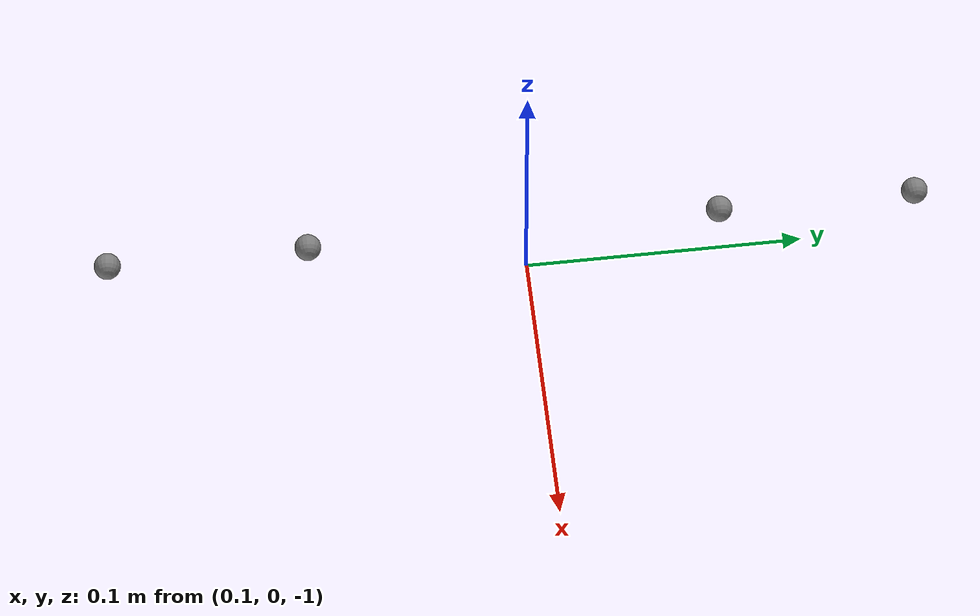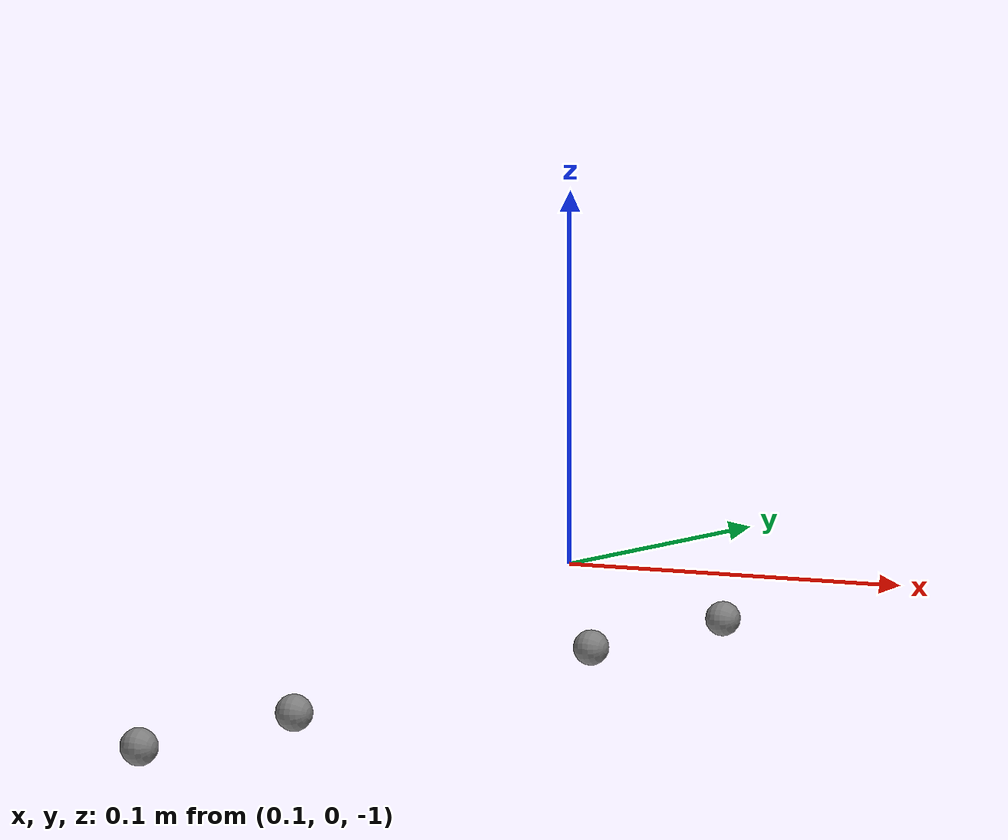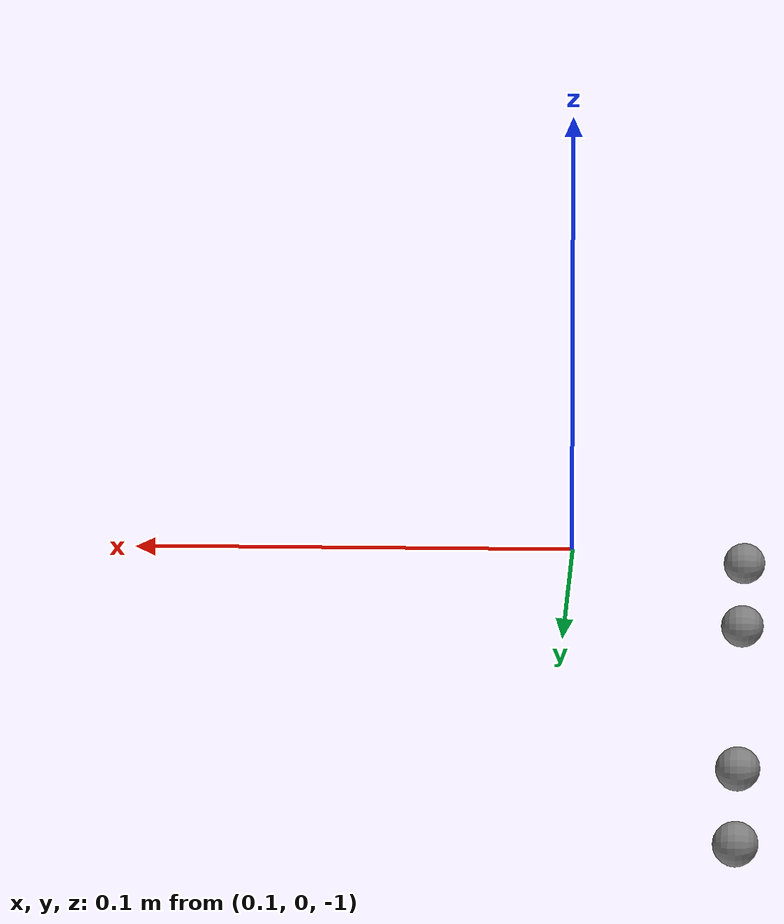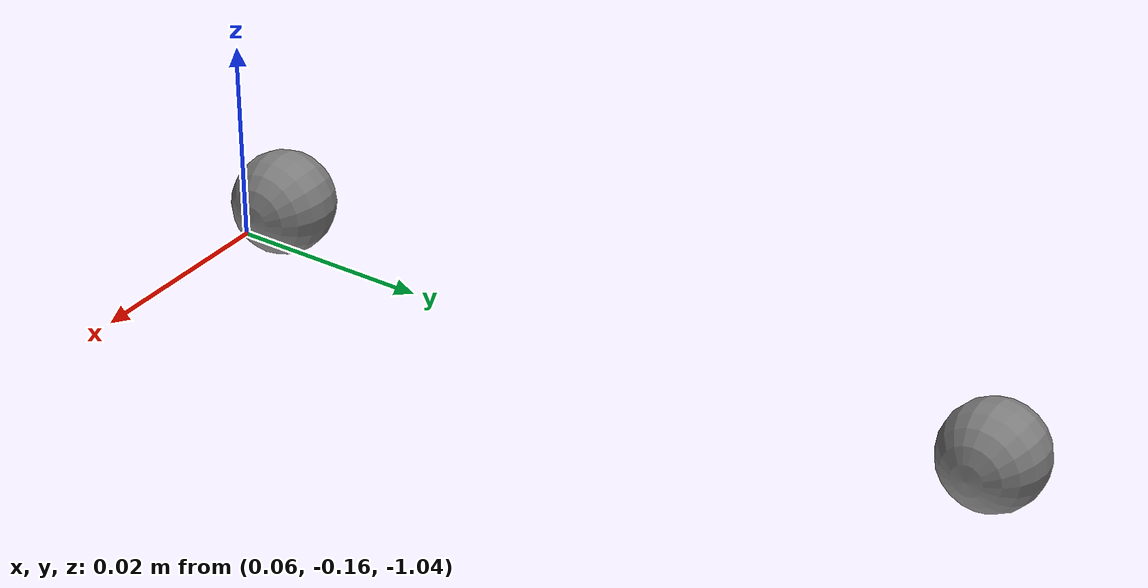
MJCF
<mujoco model="unitree_h2_plus_12dof">
  <compiler angle="radian"/>
  <default>
    <default class="collision"/>
  </default>
  <worldbody>
    <body name="pelvis" pos="0 0 0" quat="1 0 0 0">
      <inertial pos="0.0273401879 0.0192527875 0.248356972" mass="45.0364703" fullinertia="2.52740106 2.67104319 1.55453147 -0.104789805 0.473637873 0.058063274"/>
      <freejoint/>
      <body name="left_hip_pitch_link" pos="0 0.08038 -0.046407" quat="0.49999947 -0.86602571 0 0">
        <inertial pos="0.00294368 0.01735095 0.06110195" mass="2.8737" fullinertia="0.00536755004 0.00403077 0.00387518996 -1.13804191e-05 -9.87896978e-05 -0.000248859971"/>
        <joint name="left_hip_pitch_joint" axis="0 0 1" range="-2.4525975 2.7754225"/>
        <body name="left_hip_roll_link" pos="0.041774 0.019 0.0635" quat="0.353553016 0.612372652 0.353553016 0.612372652">
          <inertial pos="0.041315 -0.00607425 -0.01757892" mass="0.78507858" fullinertia="0.00228152014 0.00203648998 0.00157951988 0.000126149995 0.000208639779 -2.65400908e-05"/>
          <joint name="left_hip_roll_joint" axis="0 0 1" range="-0.467441 2.1688605"/>
          <body name="left_hip_yaw_link" pos="0.0737 -0.0095 -0.028187" quat="0.707106781 0 -0.707106781 0">
            <inertial pos="0.00069408 -0.01086587 -0.11301456" mass="7.0875" fullinertia="0.0505800001 0.0511049999 0.013319 -5.54702341e-05 0.00146680002 -0.003122"/>
            <joint name="left_hip_yaw_joint" axis="0 0 1" range="-2.827 2.827"/>
            <body name="left_knee_link" pos="-0.010308 0.022549 -0.31959" quat="0.707106781 -0.707106781 0 0">
              <inertial pos="0.00461331 0.16715459 -0.022549" mass="4.35340244" fullinertia="0.05108514 0.00334361004 0.05123842 0.000416312035 -7.19999943e-06 -1.339e-05"/>
              <joint name="left_knee_joint" axis="0 0 1" range="-0.08725 2.53025"/>
              <body name="left_ankle_roll_link" pos="0.032719 0.49662 -0.023002" quat="0.5 0.5 0.5 0.5">
                <inertial pos="0.0002146 6.424e-05 -0.01740632" mass="0.12318157" fullinertia="4.005e-05 1.44999998e-05 3.43200002e-05 2.00000001e-08 -1.99999877e-08 1.19984347e-07"/>
                <joint name="left_ankle_roll_joint" axis="0 0 1" range="-0.34906585 0.296705973"/>
                <body name="left_ankle_pitch_link" pos="-8.67361738e-19 -0.0373 -0.014516" quat="0.5 -0.5 -0.5 -0.5">
                  <inertial pos="0.032059 0.02882818 0.03700531" mass="0.89496747" fullinertia="0.00060825 0.0043749 0.00410964 -0.000176710002 4.6e-07 1.0000001e-08"/>
                  <joint name="left_ankle_pitch_joint" axis="0 0 1" range="-1.13446401 0.610865238"/>
                  <geom class="collision" fromto="-0.0749999982 0.0493000001 -0.000152455997 0.154999996 0.0493000001 -0.000152455997" size="0.005"/>
                  <geom class="collision" fromto="-0.0749999982 0.0493000001 0.0753052112 0.154999996 0.0493000001 0.0753052112" size="0.005"/>
                </body>
              </body>
            </body>
          </body>
        </body>
      </body>
      <body name="right_hip_pitch_link" pos="0 -0.08038 -0.046407" quat="0.86602571 -0.49999947 0 0">
        <inertial pos="0.00294368 0.01735095 -0.06110195" mass="2.8737" fullinertia="0.00536755004 0.00403077 0.00387518996 -1.13804191e-05 9.87896978e-05 0.000248859971"/>
        <joint name="right_hip_pitch_joint" axis="0 0 1" range="-2.4525975 2.7754225"/>
        <body name="right_hip_roll_link" pos="0.041774 0.019 -0.0635" quat="0.612372652 0.353553016 0.612372652 0.353553016">
          <inertial pos="0.041315 0.00607425 -0.01757892" mass="0.75122" fullinertia="0.00228152014 0.00203648998 0.00157951988 -0.000126149995 0.000208639779 2.65400908e-05"/>
          <joint name="right_hip_roll_joint" axis="0 0 1" range="-2.1688605 0.467441"/>
          <body name="right_hip_yaw_link" pos="0.0737 0.0095 -0.028187" quat="0.707106781 0 -0.707106781 0">
            <inertial pos="0.00069408 0.01086587 -0.11301456" mass="7.0875" fullinertia="0.0505800001 0.0511049999 0.013319 5.54702341e-05 0.00146680002 0.003122"/>
            <joint name="right_hip_yaw_joint" axis="0 0 1" range="-2.827 2.827"/>
            <body name="right_knee_link" pos="-0.010308 -0.022549 -0.31959" quat="0.707106781 -0.707106781 0 0">
              <inertial pos="0.00461331 0.16715459 0.022549" mass="4.35340244" fullinertia="0.05108514 0.00334361004 0.05123842 0.000416312035 7.19999943e-06 1.339e-05"/>
              <joint name="right_knee_joint" axis="0 0 1" range="-0.08725 2.53025"/>
              <body name="right_ankle_roll_link" pos="0.032719 0.49662 0.023002" quat="0.5 0.5 0.5 0.5">
                <inertial pos="0.0002146 -6.424e-05 -0.01740632" mass="0.12318157" fullinertia="4.005e-05 1.44999998e-05 3.43200002e-05 -2.00000001e-08 -1.99999877e-08 -1.19984347e-07"/>
                <joint name="right_ankle_roll_joint" axis="0 0 1" range="-0.296705973 0.34906585"/>
                <body name="right_ankle_pitch_link" pos="-8.67361738e-19 0.0373 -0.014516" quat="0.5 -0.5 -0.5 -0.5">
                  <inertial pos="0.032059 0.02882818 -0.03700531" mass="0.89496747" fullinertia="0.00060825 0.0043749 0.00410964 -0.000176710002 -4.6e-07 -1.0000001e-08"/>
                  <joint name="right_ankle_pitch_joint" axis="0 0 1" range="-1.13446401 0.610865238"/>
                  <geom class="collision" fromto="-0.0749999982 0.0493000001 -0.0753052112 0.154999996 0.0493000001 -0.0753052112" size="0.005"/>
                  <geom class="collision" fromto="-0.0749999982 0.0493000001 0.000152455997 0.154999996 0.0493000001 0.000152455997" size="0.005"/>
                </body>
              </body>
            </body>
          </body>
        </body>
      </body>
    </body>
  </worldbody>
</mujoco>
